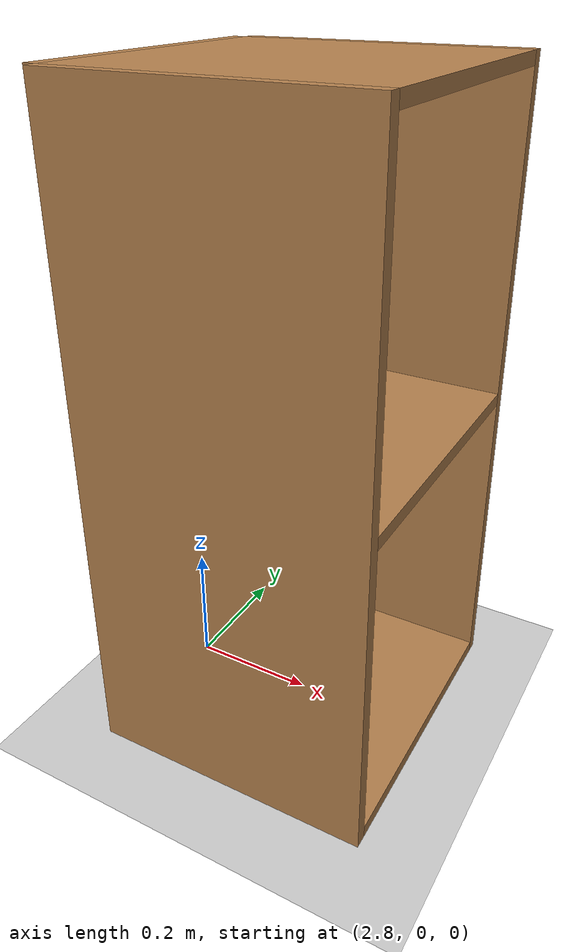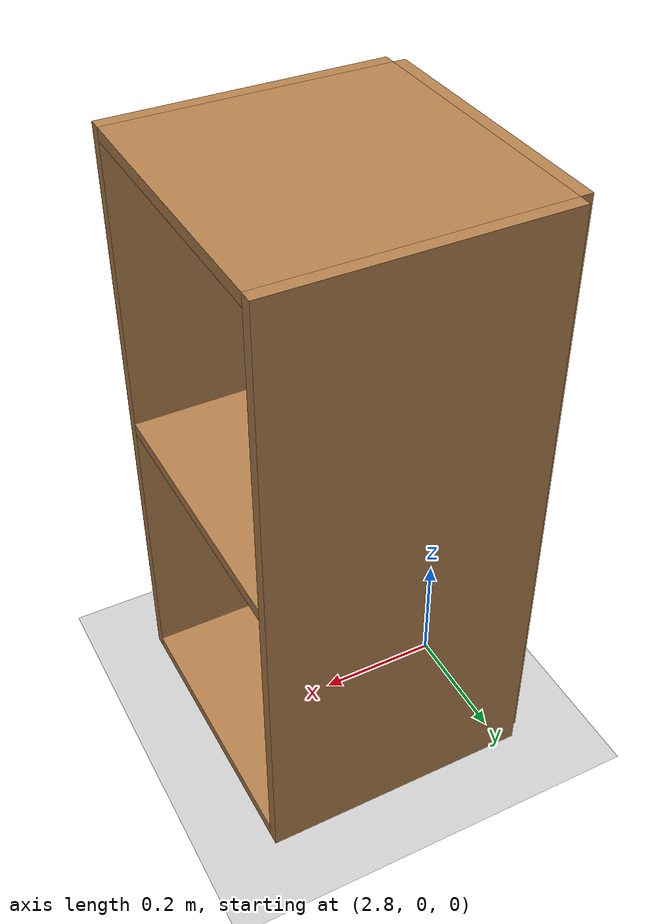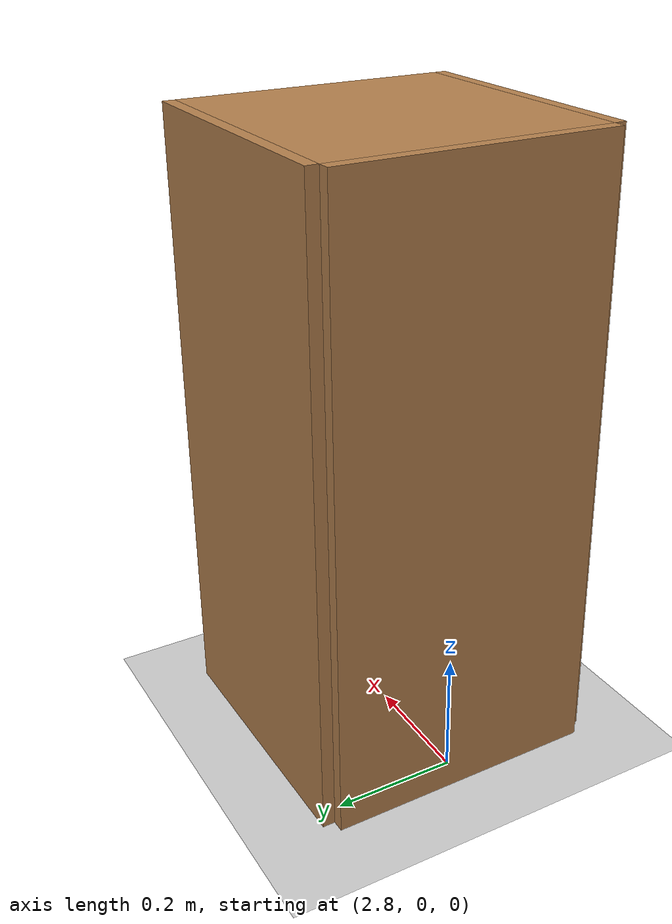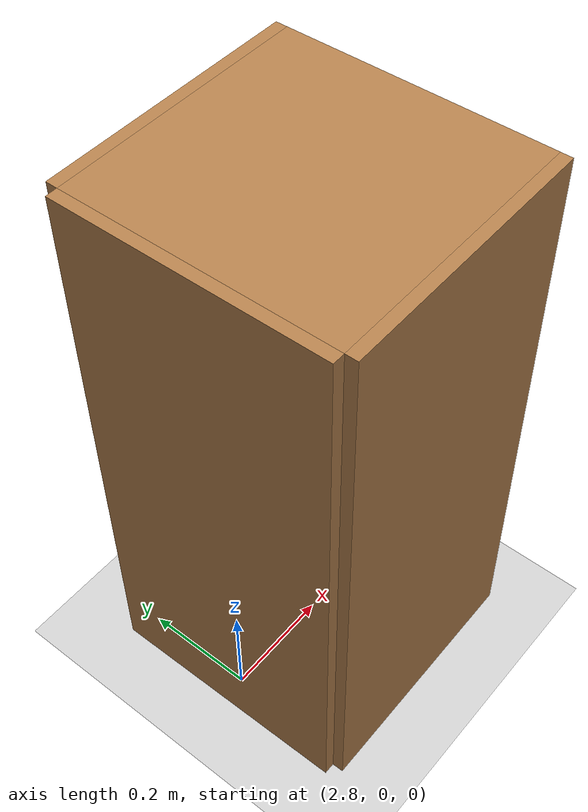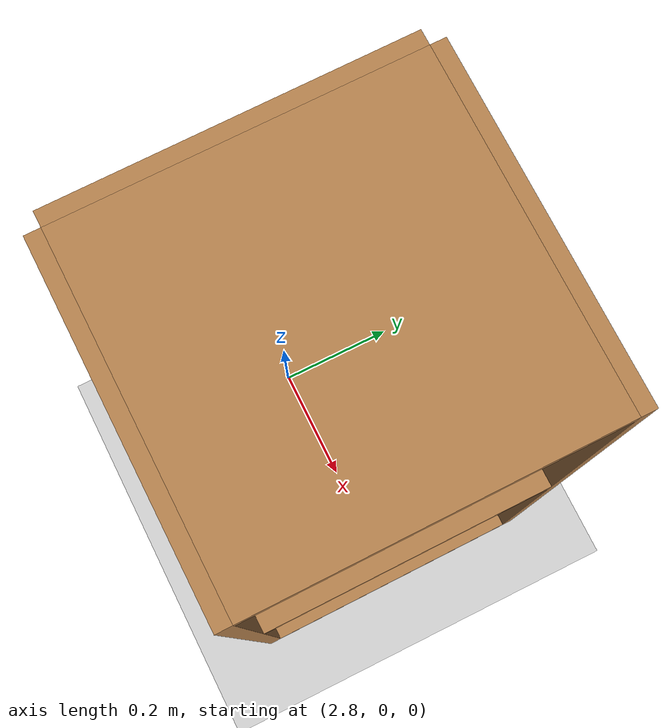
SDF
<sdf version="1.6">
 <world name="default">
  <physics name="default_physics" default="0" type="ode">
   <ode>
    <solver>
     <type>quick</type>
     <iters>20</iters>
     <sor>1</sor>
     <use_dynamic_moi_rescaling>0</use_dynamic_moi_rescaling>
    </solver>
    <constraints>
     <cfm>0</cfm>
     <erp>0.2</erp>
     <contact_max_correcting_vel>100</contact_max_correcting_vel>
     <contact_surface_layer>0</contact_surface_layer>
    </constraints>
   </ode>
   <real_time_update_rate>1000</real_time_update_rate>
   <max_step_size>0.001</max_step_size>
   <real_time_factor>1</real_time_factor>
  </physics>
  <light name="sun" type="directional">
   <pose>0 0 10 0 -0 0</pose>
   <diffuse>0.8 0.8 0.8 1</diffuse>
   <specular>0.2 0.2 0.2 1</specular>
   <attenuation>
    <range>1000</range>
    <constant>0.9</constant>
    <linear>0.01</linear>
    <quadratic>0.001</quadratic>
   </attenuation>
   <direction>-0.5 0.1 -0.9</direction>
  </light>
  <model name="ground_plane">
   <static>1</static>
   <link name="link">
    <collision name="collision">
     <geometry><plane><normal>0 0 1</normal><size>100 100</size></plane></geometry>
     <surface>
      <contact><collide_bitmask>65535</collide_bitmask></contact>
      <friction><ode><mu>100</mu><mu2>50</mu2></ode></friction>
     </surface>
    </collision>
    <visual name="visual">
     <cast_shadows>0</cast_shadows>
     <geometry><plane><normal>0 0 1</normal><size>100 100</size></plane></geometry>
     <material>
      <script><uri>file://media/materials/scripts/gazebo.material</uri><name>Gazebo/Grey</name></script>
     </material>
    </visual>
   </link>
  </model>
  <model name="cabinet_3">
   <static>1</static>
   <link name="cabinet_bottom_plate">
    <inertial>
     <pose>0 0 -1 0 -0 3.14</pose>
     <inertia><ixx>2.05</ixx><ixy>0</ixy><ixz>0</ixz><iyy>2.05</iyy><iyz>0</iyz><izz>2.05</izz></inertia>
     <mass>25</mass>
    </inertial>
    <collision name="cabinet_bottom_plate_geom">
     <pose>0 0 0.01 0 -0 0</pose>
     <geometry><box><size>0.45 0.45 0.02</size></box></geometry>
    </collision>
    <visual name="cabinet_bottom_plate_geom_visual">
     <pose>0 0 0.01 0 -0 0</pose>
     <geometry><box><size>0.45 0.45 0.02</size></box></geometry>
     <material>
      <script><uri>file://media/materials/scripts/gazebo.material</uri><name>Gazebo/Wood</name></script>
     </material>
    </visual>
    <collision name="cabinet_bottom_plate_geom_cabinet_back_plate">
     <pose>0.235 0 0.51 0 -0 0</pose>
     <geometry><box><size>0.02 0.45 1.02</size></box></geometry>
    </collision>
    <visual name="cabinet_bottom_plate_geom_cabinet_back_plate_visual">
     <pose>0.235 0 0.51 0 -0 0</pose>
     <geometry><box><size>0.02 0.45 1.02</size></box></geometry>
     <material>
      <script><uri>file://media/materials/scripts/gazebo.material</uri><name>Gazebo/Wood</name></script>
     </material>
    </visual>
    <collision name="cabinet_bottom_plate_geom_cabinet_left_plate">
     <pose>0 0.235 0.51 0 -0 0</pose>
     <geometry><box><size>0.45 0.02 1.02</size></box></geometry>
    </collision>
    <visual name="cabinet_bottom_plate_geom_cabinet_left_plate_visual">
     <pose>0 0.235 0.51 0 -0 0</pose>
     <geometry><box><size>0.45 0.02 1.02</size></box></geometry>
     <material>
      <script><uri>file://media/materials/scripts/gazebo.material</uri><name>Gazebo/Wood</name></script>
     </material>
    </visual>
    <collision name="cabinet_bottom_plate_geom_cabinet_middle_plate">
     <pose>0 0 0.51 0 -0 0</pose>
     <geometry><box><size>0.45 0.45 0.02</size></box></geometry>
    </collision>
    <visual name="cabinet_bottom_plate_geom_cabinet_middle_plate_visual">
     <pose>0 0 0.51 0 -0 0</pose>
     <geometry><box><size>0.45 0.45 0.02</size></box></geometry>
     <material>
      <script><uri>file://media/materials/scripts/gazebo.material</uri><name>Gazebo/Wood</name></script>
     </material>
    </visual>
    <collision name="cabinet_bottom_plate_geom_cabinet_right_plate">
     <pose>0 -0.235 0.51 0 -0 0</pose>
     <geometry><box><size>0.45 0.02 1.02</size></box></geometry>
    </collision>
    <visual name="cabinet_bottom_plate_geom_cabinet_right_plate_visual">
     <pose>0 -0.235 0.51 0 -0 0</pose>
     <geometry><box><size>0.45 0.02 1.02</size></box></geometry>
     <material>
      <script><uri>file://media/materials/scripts/gazebo.material</uri><name>Gazebo/Wood</name></script>
     </material>
    </visual>
    <collision name="cabinet_bottom_plate_geom_cabinet_top_plate">
     <pose>0 0 1.01 0 -0 0</pose>
     <geometry><box><size>0.45 0.45 0.02</size></box></geometry>
    </collision>
    <visual name="cabinet_bottom_plate_geom_cabinet_top_plate_visual">
     <pose>0 0 1.01 0 -0 0</pose>
     <geometry><box><size>0.45 0.45 0.02</size></box></geometry>
     <material>
      <script><uri>file://media/materials/scripts/gazebo.material</uri><name>Gazebo/Wood</name></script>
     </material>
    </visual>
    <velocity_decay><linear>0</linear><angular>0</angular></velocity_decay>
   </link>
   <pose>3 0 0 0 0 -3.13489</pose>
  </model>
  <gravity>0 0 -9.81</gravity>
  <magnetic_field>6e-06 2.3e-05 -4.2e-05</magnetic_field>
  <atmosphere type="adiabatic"/>
  <scene><ambient>0.4 0.4 0.4 1</ambient><background>0.7 0.7 0.7 1</background><shadows>1</shadows></scene>
  <audio><device>default</device></audio>
  <spherical_coordinates>
   <surface_model>EARTH_WGS84</surface_model>
   <latitude_deg>0</latitude_deg>
   <longitude_deg>0</longitude_deg>
   <elevation>0</elevation>
   <heading_deg>0</heading_deg>
  </spherical_coordinates>
 </world>
</sdf>
